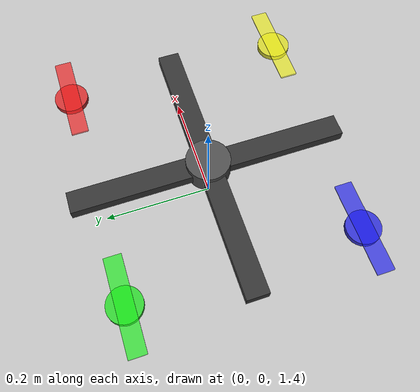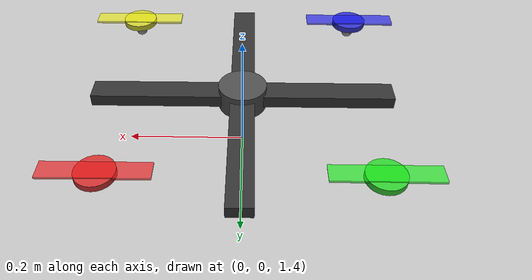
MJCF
<mujoco>
  <option timestep="0.001" gravity="0 0 -9.81"/>

  <visual>
    <headlight ambient="0.5 0.5 0.5"/>
  </visual>

  <asset>
    <texture name="grid" type="2d" builtin="checker" width="512" height="512" rgb1="0.2 0.2 0.2" rgb2="0.3 0.3 0.3"/>
    <material name="grid" texture="grid" texrepeat="1 1" texuniform="true" reflectance="0.2"/>
  </asset>

  <worldbody>
    <light pos="0 0 3" dir="0 0 -1" diffuse="0.8 0.8 0.8"/>
    <geom name="floor" type="plane" size="10 10 0.1" material="grid"/>

    <body name="quad" pos="0 0 1.5" quat="1 0 0 0">
      <joint name="root" type="free"/>
      <inertial pos="0 0 0" mass="1.2" diaginertia="2.0 2.0 4.0"/>

      <!-- Main frame body -->
      <geom type="box" size="0.25 0.02 0.01" pos="0 0 0" rgba="0.2 0.2 0.2 1"/>
      <geom type="box" size="0.02 0.25 0.01" pos="0 0 0" rgba="0.2 0.2 0.2 1"/>
      <geom type="cylinder" size="0.04 0.02" pos="0 0 0" rgba="0.3 0.3 0.3 1"/>

      <!-- Rotor 1: Front-right -->
      <site name="r1" pos=" 0.2  0.2 0" size="0.01"/>
      <geom type="cylinder" size="0.03 0.005" pos=" 0.2  0.2 0.02" rgba="0.8 0.2 0.2 1"/>
      <geom type="box" size="0.08 0.015 0.002" pos=" 0.2  0.2 0.025" rgba="0.9 0.1 0.1 0.7"/>

      <!-- Rotor 2: Front-left -->
      <site name="r2" pos="-0.2  0.2 0" size="0.01"/>
      <geom type="cylinder" size="0.03 0.005" pos="-0.2  0.2 0.02" rgba="0.2 0.8 0.2 1"/>
      <geom type="box" size="0.08 0.015 0.002" pos="-0.2  0.2 0.025" rgba="0.1 0.9 0.1 0.7"/>

      <!-- Rotor 3: Rear-left -->
      <site name="r3" pos="-0.2 -0.2 0" size="0.01"/>
      <geom type="cylinder" size="0.03 0.005" pos="-0.2 -0.2 0.02" rgba="0.2 0.2 0.8 1"/>
      <geom type="box" size="0.08 0.015 0.002" pos="-0.2 -0.2 0.025" rgba="0.1 0.1 0.9 0.7"/>

      <!-- Rotor 4: Rear-right -->
      <site name="r4" pos=" 0.2 -0.2 0" size="0.01"/>
      <geom type="cylinder" size="0.03 0.005" pos=" 0.2 -0.2 0.02" rgba="0.8 0.8 0.2 1"/>
      <geom type="box" size="0.08 0.015 0.002" pos=" 0.2 -0.2 0.025" rgba="0.9 0.9 0.1 0.7"/>

      <!-- Camera for visualization -->
      <camera name="track" mode="trackcom" pos="0 -2 1" xyaxes="1 0 0 0 0.5 1"/>
    </body>
  </worldbody>
</mujoco>
